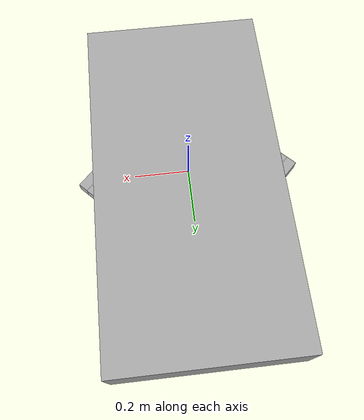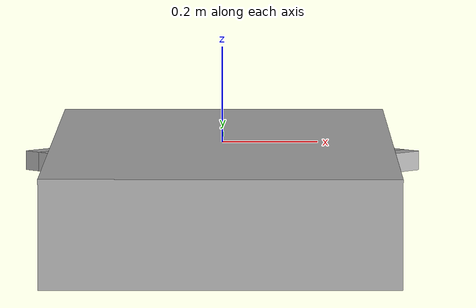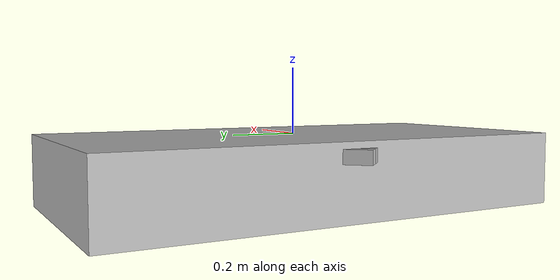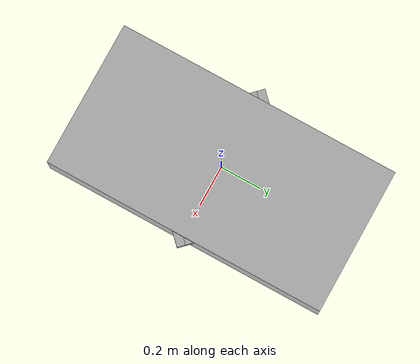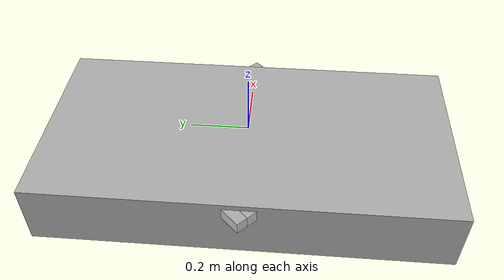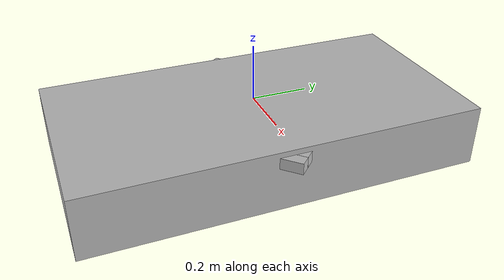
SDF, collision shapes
<?xml version="1.0" ?>
<!-- |    This document was autogenerated by xacro from station_cherry_red_table_top_compliant.sdf.xacro | -->
<!-- |    EDITING THIS FILE BY HAND IS NOT RECOMMENDED                                 | -->
<sdf version="1.6" xmlns:drake="drake.mit.edu">
  <model name="station_table_top">
    <link name="station_table_top">
      <pose>0 0 0 0 0 0</pose>
      <inertial>
        <!-- These are just placeholder inertial values, since this body is
        fixed to the world-->
        <pose>5.43e-05 -0.0196 0.0505 0 0 0</pose>
        <mass>0.136</mass>
        <inertia>
          <ixx> 0.000109</ixx>
          <ixy>-0.000000</ixy>
          <ixz> 0.000000</ixz>
          <iyy> 0.000128</iyy>
          <iyz>-0.000000</iyz>
          <izz> 0.000054</izz>
        </inertia>
      </inertial>
      <visual name="station_table_top">
        <pose>0 0 0 0 0 0</pose>
        <geometry>
          <mesh>
            <uri>/data/kylehatch/lbm_eval/lbm_eval_models/stations/franka_station/assets/station_cherry_red_table_top.gltf</uri>
            <scale>1.0 1.0 1.0</scale>
          </mesh>
        </geometry>
      </visual>
      <collision name="table_top_collision_box">
        <pose>0.0 0.0 -0.10952500000000001 0.0 -0.0 0.0</pose>
        <geometry>
          <box>
            <size>0.715 1.4 0.21905000000000002</size>
          </box>
        </geometry>
        <drake:proximity_properties>
          <drake:mu_dynamic>0.3</drake:mu_dynamic>
          <drake:mu_static>0.3</drake:mu_static>
          <drake:compliant_hydroelastic/>
          <!-- 1e7 Pascals to mimic HDPE plastic -->
          <drake:hydroelastic_modulus>1e7</drake:hydroelastic_modulus>
          <!-- 20 s/m roughly limits bouncing velocity to 0.05 m/s -->
          <drake:hunt_crossley_dissipation>20</drake:hunt_crossley_dissipation>
        </drake:proximity_properties>
      </collision>
      <collision name="table_cart_platform_back_collision_box">
        <pose>0.17844 0.20623 -0.03905 0.0 -0.0 0.7854</pose>
        <geometry>
          <box>
            <size>0.04 0.54397 0.04</size>
          </box>
        </geometry>
      </collision>
      <collision name="table_cart_platform_front_collision_box">
        <pose>-0.17844 -0.20623 -0.03905 0.0 -0.0 0.7854</pose>
        <geometry>
          <box>
            <size>0.04 0.54397 0.04</size>
          </box>
        </geometry>
      </collision>
      <collision name="table_cart_platform_left_collision_box">
        <pose>-0.20623 0.17844 -0.03905 0.0 -0.0 0.7854</pose>
        <geometry>
          <box>
            <size>0.54397 0.04 0.04</size>
          </box>
        </geometry>
      </collision>
      <collision name="table_cart_platform_right_collision_box">
        <pose>0.20623 -0.17844 -0.03905 0.0 -0.0 0.7854</pose>
        <geometry>
          <box>
            <size>0.54397 0.04 0.04</size>
          </box>
        </geometry>
      </collision>
    </link>
    <frame name="origin">
      <pose relative_to="station_table_top">0 0 0 0 0 0</pose>
    </frame>
  </model>
</sdf>
